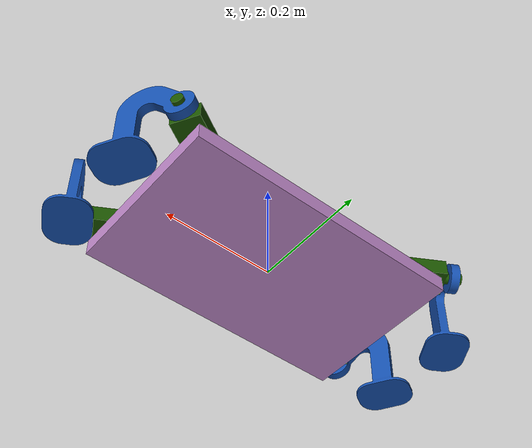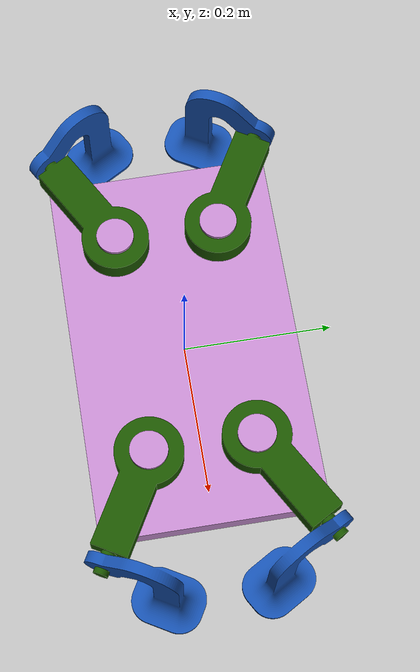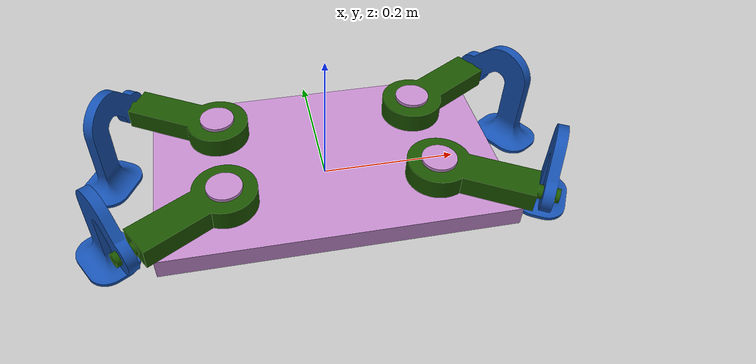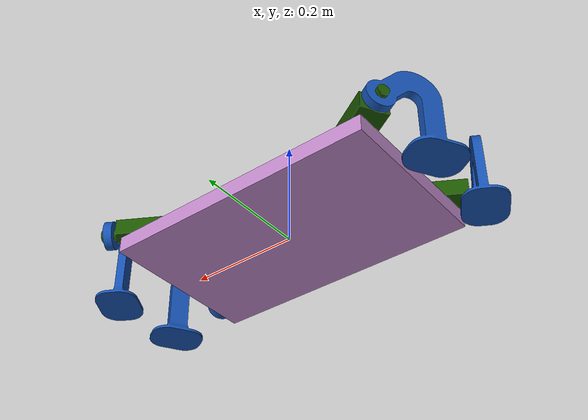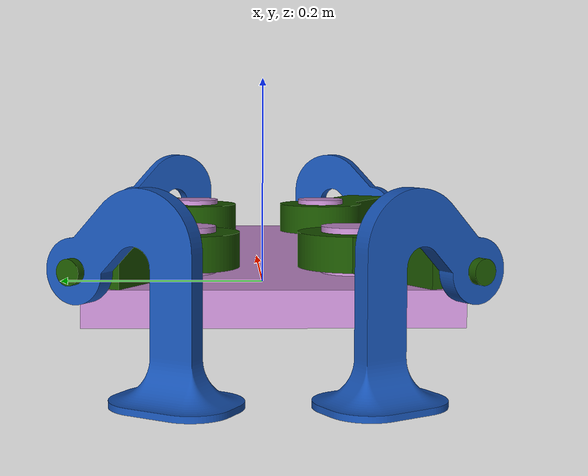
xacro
<?xml version="1.0" ?>
<!-- Generated using onshape-to-robot -->
<!-- Onshape https://cad.onshape.com/documents/cb0e539256f574f2d490db78/w/91c431183e6e22a7b620fa0c/e/f347b722bd3bd5fea800f857 -->
<robot name="gecko_robot" xmlns:xacro="http://www.ros.org/wiki/xacro">

  <xacro:include filename="$(find gecko_robot)/model/gazebo.xacro" />

  <link name="dummy_root">
    <inertial>
        <origin xyz="-2.9515e-17 6.53197e-18 0.017284" rpy="0 0 0"/>
        <mass value="6.0177"/>
        <inertia ixx="0.045097" ixy="0" ixz="0" iyy="0.127008" iyz="0" izz="0.170258"/>
    </inertial>
  </link>

  <joint name="dummy_joint" type="fixed">
      <parent link="dummy_root"/>
      <child link="base_link"/>
      <origin xyz="0 0 0" rpy="0 0 0"/>
  </joint>

  <!-- Link base_link -->
  <link name="base_link">
    <inertial>
      <origin xyz="-2.9515e-17 6.53197e-18 0.017284" rpy="0 0 0"/>
      <mass value="6.0177"/>
      <inertia ixx="0.045097" ixy="0" ixz="0" iyy="0.127008" iyz="0" izz="0.170258"/>
    </inertial>
    <!-- Part base_link -->
    <visual>
      <origin xyz="2.77556e-17 0 0" rpy="0 -0 0"/>
      <geometry>
        <mesh filename="package://gecko_robot/meshes/base_link2.stl"/>
      </geometry>
      <material name="base_link_material">
        <color rgba="0.764706 0.545098 0.803922 1"/>
      </material>
    </visual>
    <collision>
      <origin xyz="2.77556e-17 0 0" rpy="0 -0 0"/>
      <geometry>
        <mesh filename="package://gecko_robot/meshes/base_link2.stl"/>
      </geometry>
    </collision>
  </link>
  <!-- Link leg -->
  <link name="leg">
    <inertial>
      <origin xyz="3.36956e-18 0.0501902 -6.93889e-18" rpy="0 0 0"/>
      <mass value="0.354563"/>
      <inertia ixx="0.00108988" ixy="2.65059e-20" ixz="2.62112e-41" iyy="0.000173397" iyz="-3.92622e-41" izz="0.00121127"/>
    </inertial>
    <!-- Part leg -->
    <visual>
      <origin xyz="3.46945e-18 2.77556e-17 0.015" rpy="-3.14159 -2.80688e-38 2.19868e-17"/>
      <geometry>
        <mesh filename="package://gecko_robot/meshes/leg2.stl"/>
      </geometry>
      <material name="leg_material">
        <color rgba="0.105882 0.333333 0 1"/>
      </material>
    </visual>
    <collision>
      <origin xyz="3.46945e-18 2.77556e-17 0.015" rpy="-3.14159 -2.80688e-38 2.19868e-17"/>
      <geometry>
        <mesh filename="package://gecko_robot/meshes/leg2.stl"/>
      </geometry>
    </collision>
  </link>
  <!-- Link foot -->
  <link name="foot">
    <inertial>
      <origin xyz="0.0275525 -0.0651713 -5.37764e-17" rpy="0 0 0"/>
      <mass value="0.240127"/>
      <inertia ixx="0.000674926" ixy="-0.000171797" ixz="-9.12334e-20" iyy="0.000288289" iyz="5.47542e-20" izz="0.000911489"/>
    </inertial>
    <!-- Part foot -->
    <visual>
      <origin xyz="-1.38778e-17 -6.93889e-18 0.0075" rpy="-3.14159 -5.60777e-18 -1.01465e-17"/>
      <geometry>
        <mesh filename="package://gecko_robot/meshes/foot2.stl"/>
      </geometry>
      <material name="foot_material">
        <color rgba="0.0862745 0.317647 0.690196 1"/>
      </material>
    </visual>
    <collision>
      <origin xyz="-1.38778e-17 -6.93889e-18 0.0075" rpy="-3.14159 -5.60777e-18 -1.01465e-17"/>
      <geometry>
        <mesh filename="package://gecko_robot/meshes/foot2.stl"/>
      </geometry>
    </collision>
  </link>
  <!-- Frame leg_tip_1 (dummy link + fixed joint) -->
  <link name="leg_tip_1">
    <origin xyz="0 0 0" rpy="0 -0 0"/>
    <inertial>
      <origin xyz="0 0 0" rpy="0 0 0"/>
      <mass value="1e-9"/>
      <inertia ixx="0" ixy="0" ixz="0" iyy="0" iyz="0" izz="0"/>
    </inertial>
  </link>
  <joint name="leg_tip_1_frame" type="fixed">
    <origin xyz="-0.00876701 -0.128869 -5.55112e-17" rpy="-2.35619 -1.5708 0"/>
    <parent link="foot"/>
    <child link="leg_tip_1"/>
    <axis xyz="0 0 0"/>
  </joint>
  <!-- Joint from leg to foot -->
  <joint name="ankleFR" type="revolute">
    <origin xyz="-5.72459e-17 0.152417 -6.93889e-18" rpy="1.5708 -0.785398 3.14159"/>
    <parent link="leg"/>
    <child link="foot"/>
    <axis xyz="0 0 1"/>
    <limit effort="10" velocity="10" lower="0" upper="0.872665"/>
  </joint>
  <!-- Joint from base_link to leg  -->
  <joint name="kneeFR" type="revolute">
    <origin xyz="0.15 -0.07 0.05" rpy="-1.77095e-22 2.22427e-22 -2.0944"/>
    <parent link="base_link"/>
    <child link="leg"/>
    <axis xyz="0 0 1"/>
    <limit effort="10" velocity="10" lower="-1.5708" upper="0"/>
  </joint>
  <!-- Link leg_2 -->
  <link name="leg_2">
    <inertial>
      <origin xyz="5.72926e-18 0.0501902 0" rpy="0 0 0"/>
      <mass value="0.354563"/>
      <inertia ixx="0.00108988" ixy="-4.69441e-20" ixz="-1.97324e-36" iyy="0.000173397" iyz="-4.78173e-36" izz="0.00121127"/>
    </inertial>
    <!-- Part leg_2 -->
    <visual>
      <origin xyz="5.20417e-18 0 0.015" rpy="3.14159 -8.8133e-34 -4.73868e-17"/>
      <geometry>
        <mesh filename="package://gecko_robot/meshes/leg2.stl"/>
      </geometry>
      <material name="leg_2_material">
        <color rgba="0.105882 0.333333 0 1"/>
      </material>
    </visual>
    <collision>
      <origin xyz="5.20417e-18 0 0.015" rpy="3.14159 -8.8133e-34 -4.73868e-17"/>
      <geometry>
        <mesh filename="package://gecko_robot/meshes/leg2.stl"/>
      </geometry>
    </collision>
  </link>
  <!-- Link foot_2 -->
  <link name="foot_2">
    <inertial>
      <origin xyz="0.0275525 -0.0651713 -3.46945e-17" rpy="0 0 0"/>
      <mass value="0.240127"/>
      <inertia ixx="0.000674926" ixy="-0.000171797" ixz="3.6107e-20" iyy="0.000288289" iyz="-6.72949e-20" izz="0.000911489"/>
    </inertial>
    <!-- Part foot_2 -->
    <visual>
      <origin xyz="6.93889e-18 0 0.0075" rpy="3.14159 2.70904e-17 3.58404e-17"/>
      <geometry>
        <mesh filename="package://gecko_robot/meshes/foot2.stl"/>
      </geometry>
      <material name="foot_2_material">
        <color rgba="0.0862745 0.317647 0.690196 1"/>
      </material>
    </visual>
    <collision>
      <origin xyz="6.93889e-18 0 0.0075" rpy="3.14159 2.70904e-17 3.58404e-17"/>
      <geometry>
        <mesh filename="package://gecko_robot/meshes/foot2.stl"/>
      </geometry>
    </collision>
  </link>
  <!-- Frame leg_tip_2 (dummy link + fixed joint) -->
  <link name="leg_tip_2">
    <origin xyz="0 0 0" rpy="0 -0 0"/>
    <inertial>
      <origin xyz="0 0 0" rpy="0 0 0"/>
      <mass value="1e-9"/>
      <inertia ixx="0" ixy="0" ixz="0" iyy="0" iyz="0" izz="0"/>
    </inertial>
  </link>
  <joint name="leg_tip_2_frame" type="fixed">
    <origin xyz="-0.00876701 -0.128869 0" rpy="-2.35619 -1.5708 0"/>
    <parent link="foot_2"/>
    <child link="leg_tip_2"/>
    <axis xyz="0 0 0"/>
  </joint>
  <!-- Joint from leg_2 to foot_2 -->
  <joint name="ankleBR" type="revolute">
    <origin xyz="-4.16334e-17 0.152417 6.93889e-18" rpy="1.5708 -0.785398 6.7743e-16"/>
    <parent link="leg_2"/>
    <child link="foot_2"/>
    <axis xyz="0 0 1"/>
    <limit effort="10" velocity="10" lower="0" upper="0.872665"/>
  </joint>
  <!-- Joint from base_link to leg_2 -->
  <joint name="kneeBR" type="revolute">
    <origin xyz="-0.15 -0.07 0.05" rpy="2.90849e-17 -1.12646e-17 2.0944"/>
    <parent link="base_link"/>
    <child link="leg_2"/>
    <axis xyz="0 0 1"/>
    <limit effort="10" velocity="10" lower="0" upper="1.5708"/>
  </joint>
  <!-- Link leg_3 -->
  <link name="leg_3">
    <inertial>
      <origin xyz="-1.38899e-17 0.0501902 0" rpy="0 0 0"/>
      <mass value="0.354563"/>
      <inertia ixx="0.00108988" ixy="-2.29274e-20" ixz="-1.05664e-42" iyy="0.000173397" iyz="-2.03459e-42" izz="0.00121127"/>
    </inertial>
    <!-- Part leg_3 -->
    <visual>
      <origin xyz="-1.21431e-17 0 0.015" rpy="3.14159 4.59177e-40 -1.81491e-17"/>
      <geometry>
        <mesh filename="package://gecko_robot/meshes/leg2.stl"/>
      </geometry>
      <material name="leg_3_material">
        <color rgba="0.105882 0.333333 0 1"/>
      </material>
    </visual>
    <collision>
      <origin xyz="-1.21431e-17 0 0.015" rpy="3.14159 4.59177e-40 -1.81491e-17"/>
      <geometry>
        <mesh filename="package://gecko_robot/meshes/leg2.stl"/>
      </geometry>
    </collision>
  </link>
  <!-- Link foot_3 -->
  <link name="foot_3">
    <inertial>
      <origin xyz="0.0275525 -0.0651713 -4.85723e-17" rpy="0 0 0"/>
      <mass value="0.240127"/>
      <inertia ixx="0.000674926" ixy="-0.000171797" ixz="-9.6962e-20" iyy="0.000288289" iyz="6.38009e-20" izz="0.000911489"/>
    </inertial>
    <!-- Part foot_3 -->
    <visual>
      <origin xyz="1.38778e-17 -6.93889e-18 0.0075" rpy="3.14159 8.16698e-18 3.58404e-17"/>
      <geometry>
        <mesh filename="package://gecko_robot/meshes/foot2.stl"/>
      </geometry>
      <material name="foot_3_material">
        <color rgba="0.0862745 0.317647 0.690196 1"/>
      </material>
    </visual>
    <collision>
      <origin xyz="1.38778e-17 -6.93889e-18 0.0075" rpy="3.14159 8.16698e-18 3.58404e-17"/>
      <geometry>
        <mesh filename="package://gecko_robot/meshes/foot2.stl"/>
      </geometry>
    </collision>
  </link>
  <!-- Frame leg_tip_3 (dummy link + fixed joint) -->
  <link name="leg_tip_3">
    <origin xyz="0 0 0" rpy="0 -0 0"/>
    <inertial>
      <origin xyz="0 0 0" rpy="0 0 0"/>
      <mass value="1e-9"/>
      <inertia ixx="0" ixy="0" ixz="0" iyy="0" iyz="0" izz="0"/>
    </inertial>
  </link>
  <joint name="leg_tip_3_frame" type="fixed">
    <origin xyz="-0.00876701 -0.128869 -5.55112e-17" rpy="-0.785398 1.5708 0"/>
    <parent link="foot_3"/>
    <child link="leg_tip_3"/>
    <axis xyz="0 0 0"/>
  </joint>
  <!-- Joint from leg_3 to foot_3 -->
  <joint name="ankleFL" type="revolute">
    <origin xyz="-2.08167e-17 0.152417 -6.93889e-18" rpy="-1.5708 0.785398 -3.14159"/>
    <parent link="leg_3"/>
    <child link="foot_3"/>
    <axis xyz="0 0 1"/>
    <limit effort="10" velocity="10" lower="0" upper="0.872665"/>
  </joint>
  <!-- Joint from base_link to leg_3 -->
  <joint name="kneeFL" type="revolute">
    <origin xyz="0.15 0.07 0.05" rpy="-3.14159 4.58609e-25 2.0944"/>
    <parent link="base_link"/>
    <child link="leg_3"/>
    <axis xyz="0 0 1"/>
    <limit effort="10" velocity="10" lower="-1.5708" upper="0"/>
  </joint>
  <!-- Link leg_4 -->
  <link name="leg_4">
    <inertial>
      <origin xyz="-2.46547e-17 0.0501902 0" rpy="0 0 0"/>
      <mass value="0.354563"/>
      <inertia ixx="0.00108988" ixy="-5.62173e-20" ixz="3.46353e-34" iyy="0.000173397" iyz="2.04685e-34" izz="0.00121127"/>
    </inertial>
    <!-- Part leg_4 -->
    <visual>
      <origin xyz="-2.25514e-17 0 0.015" rpy="3.14159 -9.86076e-32 -4.75634e-17"/>
      <geometry>
        <mesh filename="package://gecko_robot/meshes/leg2.stl"/>
      </geometry>
      <material name="leg_4_material">
        <color rgba="0.105882 0.333333 0 1"/>
      </material>
    </visual>
    <collision>
      <origin xyz="-2.25514e-17 0 0.015" rpy="3.14159 -9.86076e-32 -4.75634e-17"/>
      <geometry>
        <mesh filename="package://gecko_robot/meshes/leg2.stl"/>
      </geometry>
    </collision>
  </link>
  <!-- Link foot_4 -->
  <link name="foot_4">
    <inertial>
      <origin xyz="0.0275525 -0.0651713 4.33681e-18" rpy="0 0 0"/>
      <mass value="0.240127"/>
      <inertia ixx="0.000674926" ixy="-0.000171797" ixz="1.14026e-20" iyy="0.000288289" iyz="-3.17415e-20" izz="0.000911489"/>
    </inertial>
    <!-- Part foot_4 -->
    <visual>
      <origin xyz="-2.77556e-17 3.46945e-18 0.0075" rpy="-3.14159 -3.03084e-17 -2.25642e-18"/>
      <geometry>
        <mesh filename="package://gecko_robot/meshes/foot2.stl"/>
      </geometry>
      <material name="foot_4_material">
        <color rgba="0.0862745 0.317647 0.690196 1"/>
      </material>
    </visual>
    <collision>
      <origin xyz="-2.77556e-17 3.46945e-18 0.0075" rpy="-3.14159 -3.03084e-17 -2.25642e-18"/>
      <geometry>
        <mesh filename="package://gecko_robot/meshes/foot2.stl"/>
      </geometry>
    </collision>
  </link>
  <!-- Frame leg_tip_4 (dummy link + fixed joint) -->
  <link name="leg_tip_4">
    <origin xyz="0 0 0" rpy="0 -0 0"/>
    <inertial>
      <origin xyz="0 0 0" rpy="0 0 0"/>
      <mass value="1e-9"/>
      <inertia ixx="0" ixy="0" ixz="0" iyy="0" iyz="0" izz="0"/>
    </inertial>
  </link>
  <joint name="leg_tip_4_frame" type="fixed">
    <origin xyz="-0.00876701 -0.128869 5.55112e-17" rpy="-0.785398 1.5708 0"/>
    <parent link="foot_4"/>
    <child link="leg_tip_4"/>
    <axis xyz="0 0 0"/>
  </joint>
  <!-- Joint from leg_4 to foot_4 -->
  <joint name="ankleBL" type="revolute">
    <origin xyz="3.64292e-17 0.152417 -2.77556e-17" rpy="-1.5708 0.785398 -9.03452e-16"/>
    <parent link="leg_4"/>
    <child link="foot_4"/>
    <axis xyz="0 0 1"/>
    <limit effort="10" velocity="10" lower="0" upper="0.872665"/>
  </joint>
  <!-- Joint from base_link to leg_4 -->
  <joint name="kneeBL" type="revolute">
    <origin xyz="-0.15 0.07 0.05" rpy="-3.14159 -7.00045e-16 -2.0944"/>
    <parent link="base_link"/>
    <child link="leg_4"/>
    <axis xyz="0 0 1"/>
    <limit effort="10" velocity="10" lower="0" upper="1.5708"/>
  </joint>

<ros2_control name="RobotSystem" type="system">

  <hardware>
    <plugin>gz_ros2_control/GazeboSimSystem</plugin>
  </hardware>

  <joint name="kneeFR">
    <command_interface name="position">
      <param name="min">-1.5708</param>
      <param name="max">0</param>
    </command_interface>
    <state_interface name="position"/>
    <state_interface name="velocity"/>
    <state_interface name="effort"/>
  </joint>

  <joint name="ankleFR">
    <command_interface name="position">
      <param name="min">0</param>
      <param name="max">0.872665</param>
    </command_interface>
    <state_interface name="position"/>
    <state_interface name="velocity"/>
    <state_interface name="effort"/>
  </joint>

  <joint name="kneeFL">
    <command_interface name="position">
      <param name="min">-1.5708</param>
      <param name="max">0</param>
    </command_interface>
    <state_interface name="position"/>
    <state_interface name="velocity"/>
    <state_interface name="effort"/>
  </joint>

  <joint name="ankleFL">
    <command_interface name="position">
      <param name="min">0</param>
      <param name="max">0.872665</param>
    </command_interface>
    <state_interface name="position"/>
    <state_interface name="velocity"/>
    <state_interface name="effort"/>
  </joint>

  <joint name="kneeBR">
    <command_interface name="position">
      <param name="min">0</param>
      <param name="max">1.5708</param>
    </command_interface>
    <state_interface name="position"/>
    <state_interface name="velocity"/>
    <state_interface name="effort"/>
  </joint>

  <joint name="ankleBR">
    <command_interface name="position">
      <param name="min">0</param>
      <param name="max">0.872665</param>
    </command_interface>
    <state_interface name="position"/>
    <state_interface name="velocity"/>
    <state_interface name="effort"/>
  </joint>

  <joint name="kneeBL">
    <command_interface name="position">
      <param name="min">0</param>
      <param name="max">1.5708</param>
    </command_interface>
    <state_interface name="position"/>
    <state_interface name="velocity"/>
    <state_interface name="effort"/>
  </joint>

  <joint name="ankleBL">
    <command_interface name="position">
      <param name="min">0</param>
      <param name="max">0.872665</param>
    </command_interface>
    <state_interface name="position"/>
    <state_interface name="velocity"/>
    <state_interface name="effort"/>
  </joint>

</ros2_control>

</robot>
